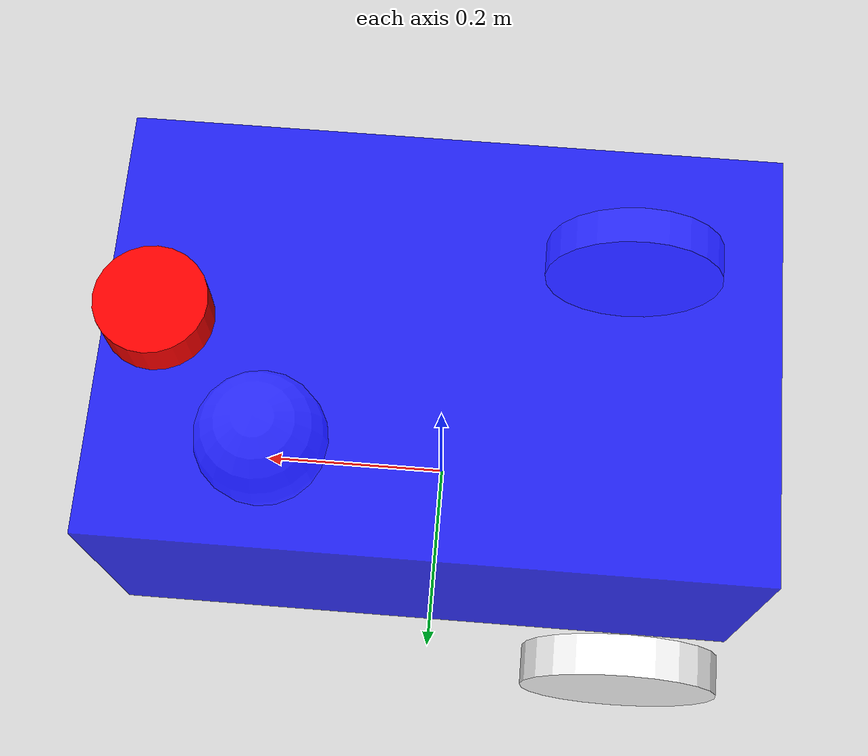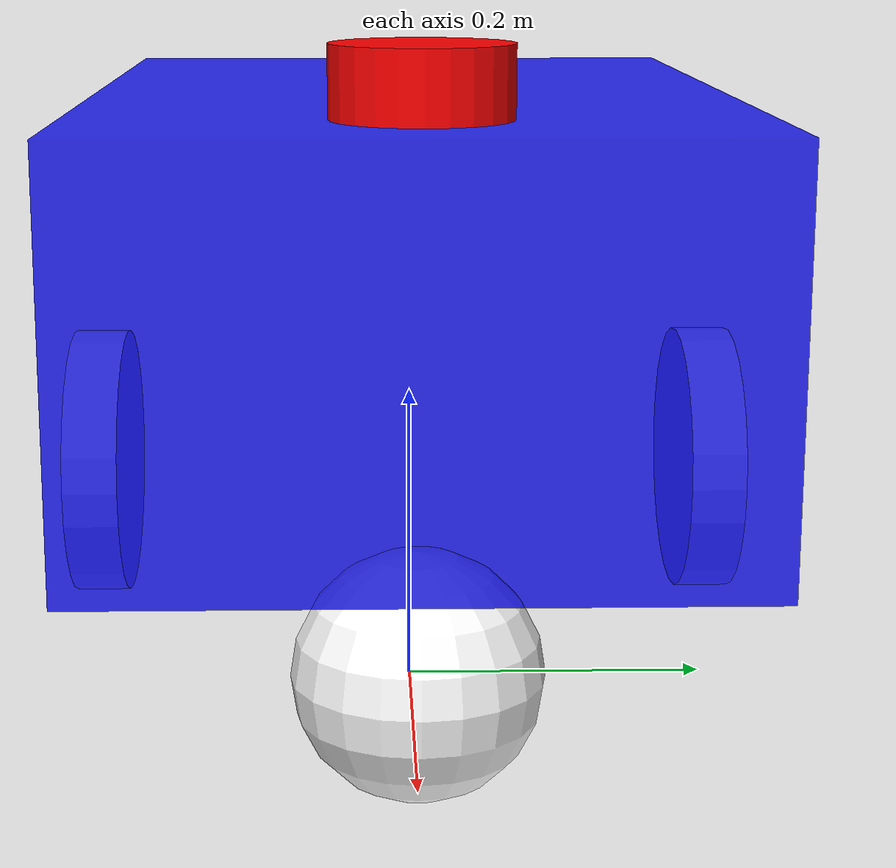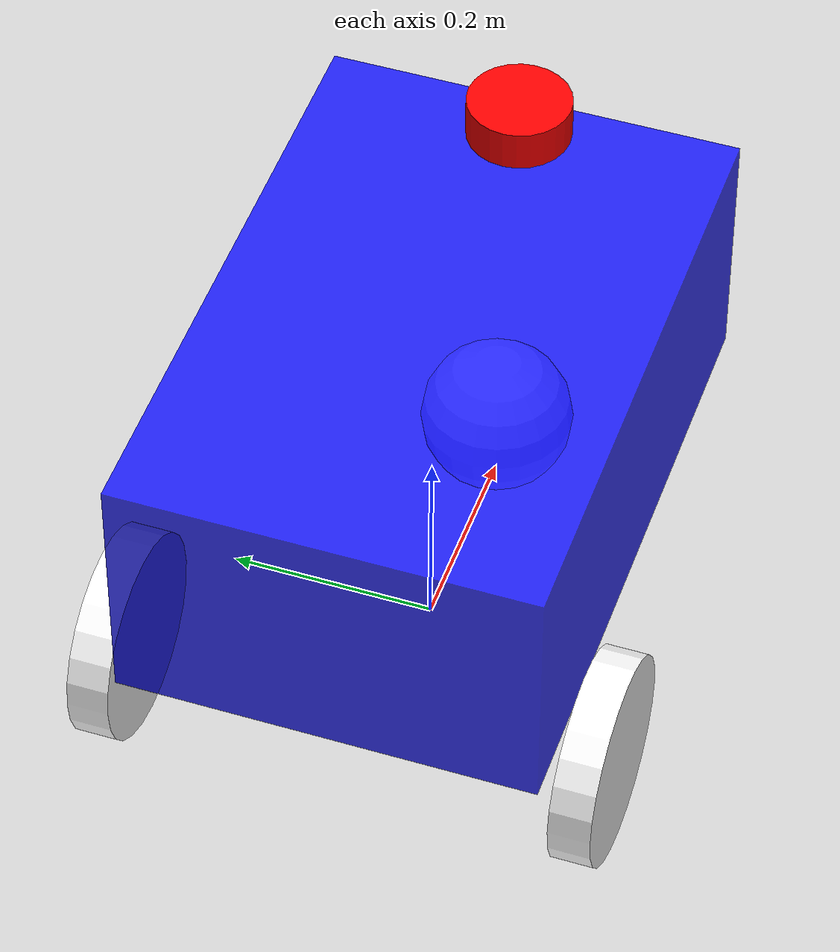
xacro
<?xml version="1.0"?>
<robot xmlns:xacro="http://www.ros.org/wiki/xacro" name="cartbot">

    <xacro:include filename="$(find cartbot)/xacro/robot1/cartbot.gazebo.xacro" />
    <xacro:include filename="$(find cartbot)/xacro/robot1/lidar.xacro" />

    <xacro:property name="body_mass" value="15"/>
    <xacro:property name="body_width" value="0.4"/>
    <xacro:property name="body_height" value="0.25"/>
    <xacro:property name="body_length" value="0.6"/>
    <xacro:property name="wheel_gap" value="0.46"/>
    <xacro:property name="wheel_mass" value="2"/>
    <xacro:property name="wheel_radius" value="0.1"/>
    <xacro:property name="wheel_width" value="0.04"/>
    <xacro:property name="ground_clearnace" value="0.15"/>

    <material name="blue">
        <color rgba="0.0 0.0 1.0 0.8"/>
    </material>

    <material name="white">
        <color rgba="1 1 1 1"/>
    </material>

    <xacro:macro name="box_inertia" params="m w h d">
        <inertial>
            <mass value="${m}"/>
            <inertia ixx="${m / 12.0 * (d*d + h*h)}" ixy="0.0" ixz="0.0" iyy="${m / 12.0 * (w*w + h*h)}" iyz="0.0" izz="${m / 12.0 * (w*w + d*d)}"/>
        </inertial>
    </xacro:macro>

    <xacro:macro name="cylinder_inertia" params="m r h">
        <inertial>
            <mass value="${m}"/>
            <inertia ixx="${m*(3*r*r+h*h)/12}" ixy = "0" ixz = "0" iyy="${m*(3*r*r+h*h)/12}" iyz = "0" izz="${m*r*r/2}"/>
        </inertial>
    </xacro:macro>

    <link name='base_footprint'/>

    <joint name="base_joint" type="fixed">
        <parent link="base_footprint"/>
        <child link="body_link"/>
        <origin xyz="0.0 0.0 ${body_height/2 + ground_clearnace}" rpy="0 0 0"/>
    </joint>

    <link name='body_link'>
        <xacro:box_inertia m="${body_mass}" w="${body_width}" h="${body_height}" d="${body_length}"/>
        <visual>
            <origin xyz="0.0 0.0 0.0" rpy="0.0 0.0 0.0"/>
            <geometry>
                <box size="${body_length} ${body_width} ${body_height}"/>
            </geometry>
            <material name="blue"/>
        </visual>
        <collision>
            <geometry>
                <box size="${body_length} ${body_width} ${body_height}"/>
            </geometry>
        </collision>
    </link>

    <link name='wheel_left_link'>
        <xacro:cylinder_inertia m="${wheel_mass}" r="${wheel_radius}" h="${wheel_width}"/>
        <visual>
            <origin xyz="0.0 0.0 0.0" rpy="0.0 0.0 0.0"/>
            <geometry>
                <cylinder length="${wheel_width}" radius="${wheel_radius}"/>
            </geometry>
            <material name="white"/>
        </visual>
        <collision>
            <geometry>
                <cylinder length="${wheel_width}" radius="${wheel_radius}"/>
            </geometry>
        </collision>
    </link>

    <joint name="wheel_left_joint" type="continuous">
        <parent link="body_link"/>
        <child link="wheel_left_link"/>
        <origin xyz="-${body_length/2 - wheel_radius} ${wheel_gap/2*1} -${ground_clearnace+body_height/2 - wheel_radius}" rpy="-${pi/2} 0.0 0.0"/>
        <axis xyz="0 0 1"/>
        <limit effort="10000" velocity="1000"/>
        <dynamics damping="1.0" friction="1.0"/>
    </joint>

    <link name='wheel_right_link'>
        <xacro:cylinder_inertia m="${wheel_mass}" r="${wheel_radius}" h="${wheel_width}"/>
        <visual>
            <origin xyz="0.0 0.0 0.0" rpy="0.0 0.0 0.0"/>
            <geometry>
                <cylinder length="${wheel_width}" radius="${wheel_radius}"/>
            </geometry>
            <material name="white"/>
        </visual>
        <collision>
            <geometry>
                <cylinder length="${wheel_width}" radius="${wheel_radius}"/>
            </geometry>
        </collision>
    </link>

    <joint name="wheel_right_joint" type="continuous">
        <parent link="body_link"/>
        <child link="wheel_right_link"/>
        <origin xyz="-${body_length/2 - wheel_radius} ${wheel_gap/2*-1} -${ground_clearnace+body_height/2 - wheel_radius}" rpy="${pi/2} 0.0 0.0"/>
        <axis xyz="0 0 -1"/>
        <limit effort="10000" velocity="1000"/>
        <dynamics damping="1.0" friction="1.0"/>
    </joint>

    <joint name="caster_joint" type="fixed">
        <parent link="body_link"/>
        <child link="caster_wheel_link"/>
        <origin xyz="0.2 0.0 -${body_height/2 + ground_clearnace/2}" rpy="0.0 0.0 0.0" />
    </joint>

    <link name='caster_wheel_link'>
        <visual>
            <origin xyz="0.0 0.0 0.0" rpy="0.0 0.0 0.0"/>
            <geometry>
                <sphere radius="${ground_clearnace/2}" />
            </geometry>
            <material name="white"/>
        </visual>
        <collision>
            <geometry>
                <sphere radius="${ground_clearnace/2}" />
            </geometry>
        </collision>
    </link>
</robot>

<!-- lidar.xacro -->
<robot xmlns:xacro="http://www.ros.org/wiki/xacro">

    <material name="red">
        <color rgba="1 0 0 1"/>
    </material>

    <xacro:macro name="cylinder_inertia" params="m r h">
        <inertial>
            <mass value="${m}"/>
            <inertia ixx="${m*(3*r*r+h*h)/12}" ixy = "0" ixz = "0" iyy="${m*(3*r*r+h*h)/12}" iyz = "0" izz="${m*r*r/2}"/>
        </inertial>
    </xacro:macro>

    <joint name="laser_joint" type="fixed">
        <parent link="body_link"/>
        <child link="laser_frame"/>
        <origin xyz="0.25 0 0.15" rpy="0 0 0"/>
    </joint>

    <link name="laser_frame">
        <visual>
            <geometry>
                <cylinder radius="0.05" length="0.04"/>
            </geometry>
            <material name="red"/>
        </visual>
        <collision>
            <geometry>
                <cylinder radius="0.05" length="0.04"/>
            </geometry>
        </collision>
        <xacro:cylinder_inertia m="0.1" r="0.05" h="0.04" />
    </link>
</robot>
